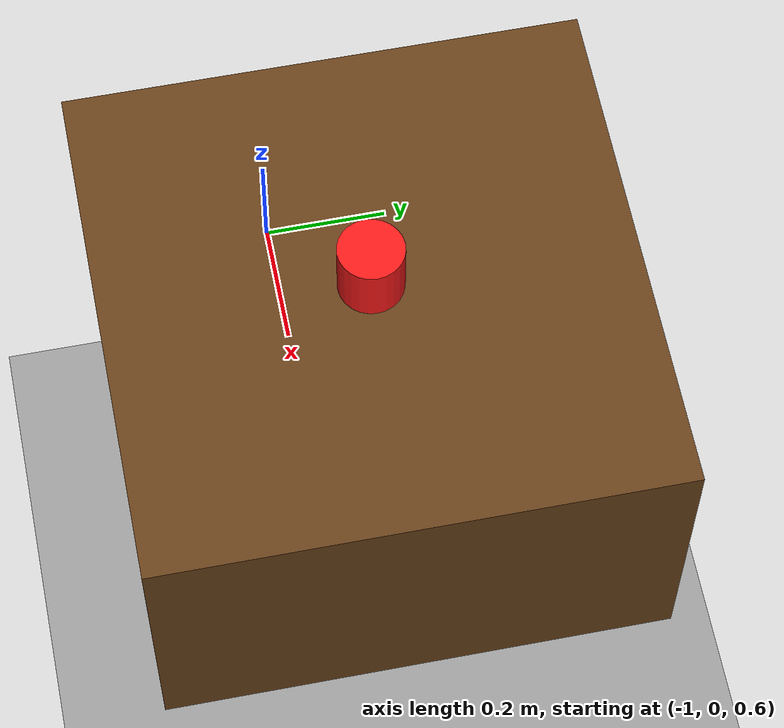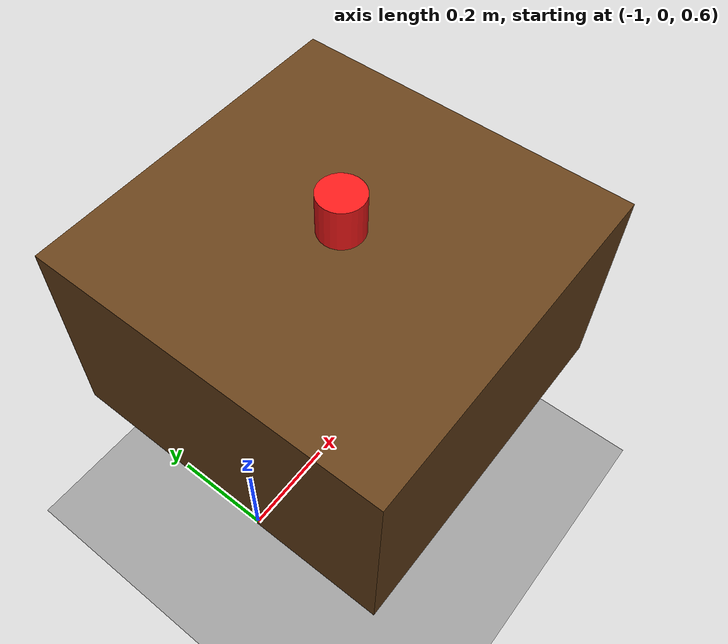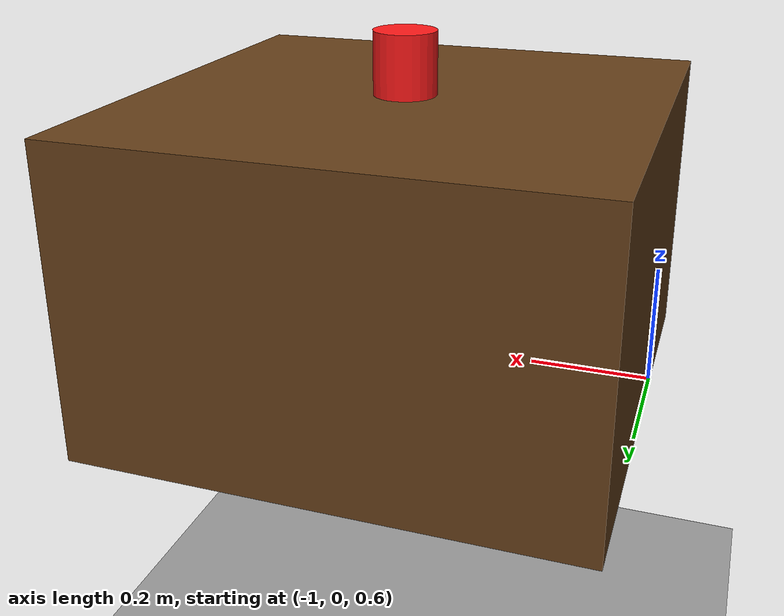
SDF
<?xml version="1.0"?>
<sdf version="1.9">
  <world name="pick_place_world">

    <!-- Required Gazebo Harmonic system plugins -->
    <plugin filename="gz-sim-physics-system"
      name="gz::sim::systems::Physics" />
    <plugin filename="gz-sim-scene-broadcaster-system"
      name="gz::sim::systems::SceneBroadcaster" />
    <plugin filename="gz-sim-user-commands-system"
      name="gz::sim::systems::UserCommands" />

    <!-- Lighting -->
    <light type="directional" name="sun">
      <cast_shadows>true</cast_shadows>
      <pose>0 0 10 0 0 0</pose>
      <diffuse>0.8 0.8 0.8 1</diffuse>
      <specular>0.2 0.2 0.2 1</specular>
      <direction>-0.5 0.1 -0.9</direction>
    </light>

    <!-- Ground plane -->
    <model name="ground_plane">
      <static>true</static>
      <link name="link">
        <collision name="collision">
          <geometry>
            <plane>
              <normal>0 0 1</normal>
              <size>20 20</size>
            </plane>
          </geometry>
        </collision>
        <visual name="visual">
          <geometry>
            <plane>
              <normal>0 0 1</normal>
              <size>20 20</size>
            </plane>
          </geometry>
          <material>
            <ambient>0.6 0.6 0.6 1</ambient>
            <diffuse>0.6 0.6 0.6 1</diffuse>
          </material>
        </visual>
      </link>
    </model>

    <!-- Table: top surface at Z=1.332, so centre at Z=0.832 -->
    <model name="table">
      <static>true</static>
      <pose>-0.6 0.1 0.832 0 0 0</pose>
      <link name="link">
        <collision name="collision">
          <geometry>
            <box>
              <size>0.8 0.8 0.5</size>
            </box>
          </geometry>
        </collision>
        <visual name="visual">
          <geometry>
            <box>
              <size>0.8 0.8 0.5</size>
            </box>
          </geometry>
          <material>
            <ambient>0.4 0.25 0.1 1</ambient>
            <diffuse>0.4 0.25 0.1 1</diffuse>
          </material>
        </visual>
      </link>
    </model>

    <!-- Cylinder sits on table top: Z = 0.832 + 0.25 + 0.05 = 1.132 -->
    <model name="target_cylinder">
      <pose>-0.6 0.1 1.132 0 0 0</pose>
      <link name="link">
        <inertial>
          <mass>0.1</mass>
          <inertia>
            <ixx>0.000108</ixx>
            <ixy>0</ixy>
            <ixz>0</ixz>
            <iyy>0.000108</iyy>
            <iyz>0</iyz>
            <izz>0.0000625</izz>
          </inertia>
        </inertial>
        <collision name="collision">
          <geometry>
            <cylinder>
              <radius>0.05</radius>
              <length>0.1</length>
            </cylinder>
          </geometry>
        </collision>
        <visual name="visual">
          <geometry>
            <cylinder>
              <radius>0.05</radius>
              <length>0.1</length>
            </cylinder>
          </geometry>
          <material>
            <ambient>1 0.1 0.1 1</ambient>
            <diffuse>1 0.1 0.1 1</diffuse>
          </material>
        </visual>
      </link>
    </model>

  </world>
</sdf>
